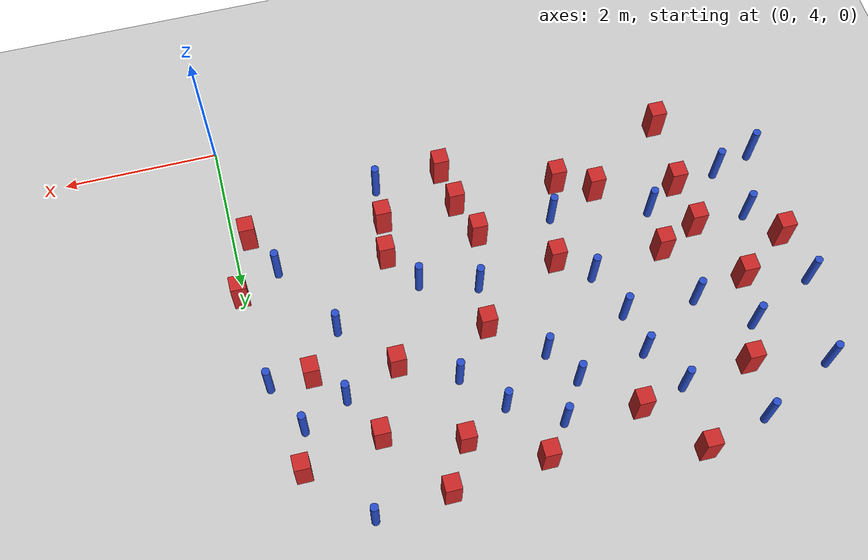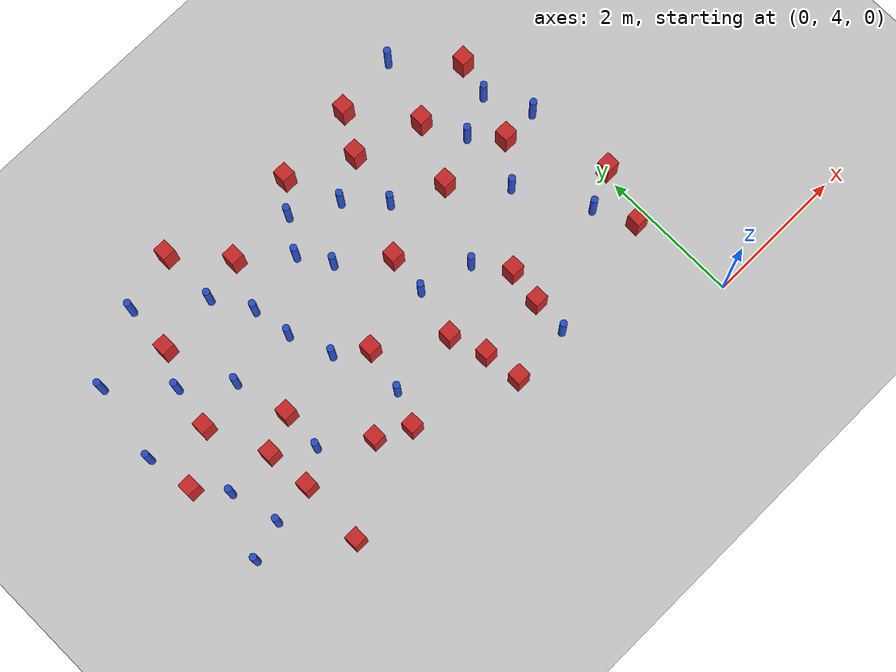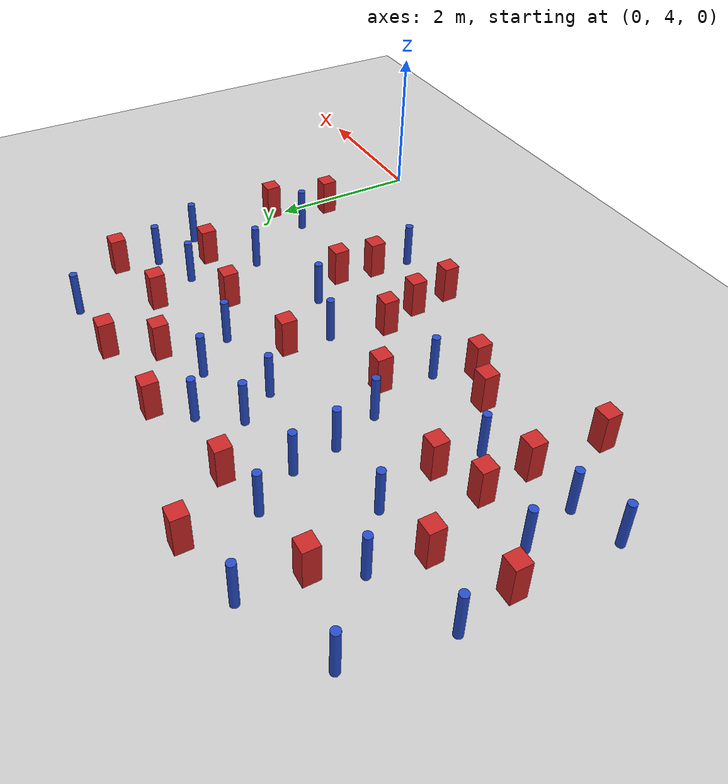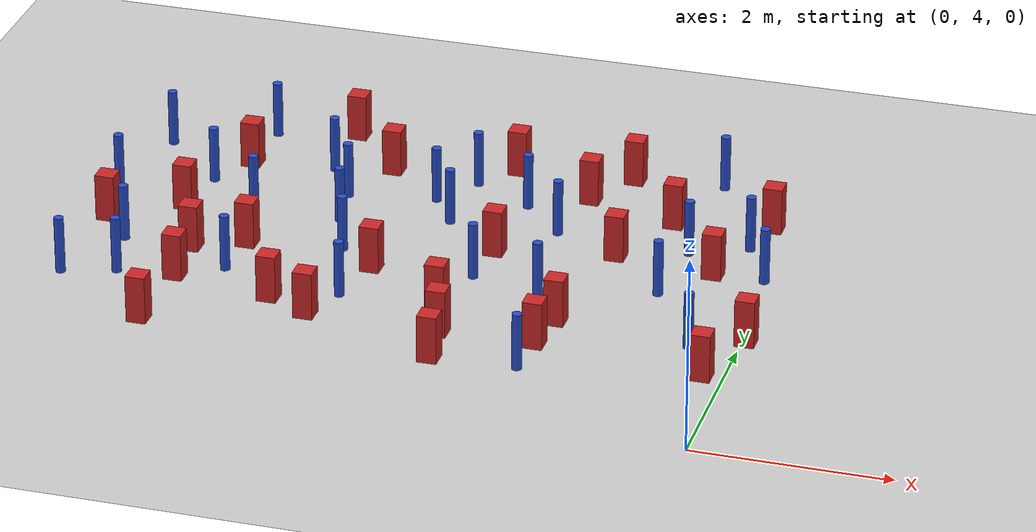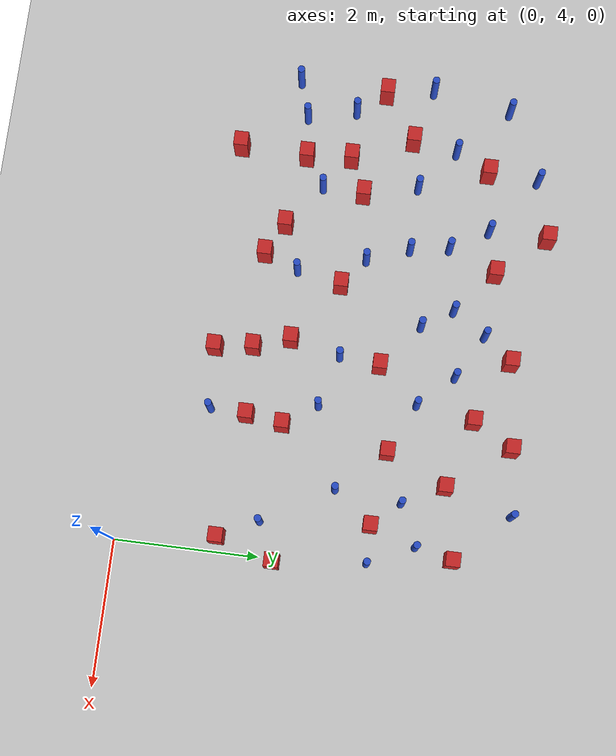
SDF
<sdf version="1.6">
 <world name="default">
  <model name="ground_plane">
   <static>1</static>
   <link name="link">
    <collision name="collision">
     <geometry><plane><normal>0 0 1</normal><size>100 100</size></plane></geometry>
     <surface><friction><ode><mu>100</mu><mu2>50</mu2></ode></friction></surface>
    </collision>
    <visual name="visual">
     <cast_shadows>0</cast_shadows>
     <geometry><plane><normal>0 0 1</normal><size>100 100</size></plane></geometry>
     <material>
      <ambient>1.0 1.0 1.0 1.0</ambient>
      <diffuse>0.8 0.8 0.8 1.0</diffuse>
      <specular>0.01 0.01 0.01 1.000000</specular>
     </material>
    </visual>
   </link>
  </model>
  <model name="square_post_obstacle2">
   <static>true</static>
   <pose>-2.89572742521 5.56003379389 1.91545236811e-07 -7.35059704564e-06 1.12565212e-07 2.39332434364e-05</pose>
   <link name="link">
    <pose>0 0 0.25 0 -0 0</pose>
    <inertial>
     <mass>100</mass>
     <inertia>
      <ixx>0.166667</ixx>
      <ixy>0</ixy>
      <ixz>0</ixz>
      <iyy>0.166667</iyy>
      <iyz>0</iyz>
      <izz>0.166667</izz>
     </inertia>
    </inertial>
    <collision name="collision"><geometry><box><size>.2 .2 .5</size></box></geometry></collision>
    <visual name="visual">
     <geometry><box><size>.2 .2 .5</size></box></geometry>
     <material>
      <script><name>Gazebo/Red</name><uri>file://media/materials/scripts/gazebo.material</uri></script>
     </material>
    </visual>
   </link>
  </model>
  <model name="pole_obstacle3">
   <static>true</static>
   <pose>-4.05855191227 6.03267944209 7.38925637345e-09 -8.47170692796e-08 1.24976764786e-08 -1.74513093032e-07</pose>
   <link name="link">
    <pose>0 0 0.3 0 -0 0</pose>
    <inertial>
     <mass>1</mass>
     <inertia><ixx>0.145833</ixx><ixy>0</ixy><ixz>0</ixz><iyy>0.145833</iyy><iyz>0</iyz><izz>0.125</izz></inertia>
    </inertial>
    <collision name="collision">
     <geometry><cylinder><radius>0.05</radius><length>.6</length></cylinder></geometry>
    </collision>
    <visual name="visual">
     <geometry><cylinder><radius>0.05</radius><length>.6</length></cylinder></geometry>
     <material>
      <script><name>Gazebo/Blue</name><uri>file://media/materials/scripts/gazebo.material</uri></script>
     </material>
    </visual>
   </link>
  </model>
  <model name="pole_obstacle4">
   <static>true</static>
   <pose>-4.62733506673 8.13093342007 7.38925637345e-09 -8.471706928e-08 1.24976765081e-08 -1.74513093015e-07</pose>
   <link name="link">
    <pose>0 0 0.3 0 -0 0</pose>
    <inertial>
     <mass>1</mass>
     <inertia><ixx>0.145833</ixx><ixy>0</ixy><ixz>0</ixz><iyy>0.145833</iyy><iyz>0</iyz><izz>0.125</izz></inertia>
    </inertial>
    <collision name="collision">
     <geometry><cylinder><radius>0.05</radius><length>.6</length></cylinder></geometry>
    </collision>
    <visual name="visual">
     <geometry><cylinder><radius>0.05</radius><length>.6</length></cylinder></geometry>
     <material>
      <script><name>Gazebo/Blue</name><uri>file://media/materials/scripts/gazebo.material</uri></script>
     </material>
    </visual>
   </link>
  </model>
  <model name="square_post_obstacle14">
   <static>true</static>
   <pose>-5.752765113 5.96022098293 1.91545236811e-07 -7.35059704564e-06 1.12565212e-07 2.39332434364e-05</pose>
   <link name="link">
    <pose>0 0 0.25 0 -0 0</pose>
    <inertial>
     <mass>100</mass>
     <inertia>
      <ixx>0.166667</ixx>
      <ixy>0</ixy>
      <ixz>0</ixz>
      <iyy>0.166667</iyy>
      <iyz>0</iyz>
      <izz>0.166667</izz>
     </inertia>
    </inertial>
    <collision name="collision"><geometry><box><size>.2 .2 .5</size></box></geometry></collision>
    <visual name="visual">
     <geometry><box><size>.2 .2 .5</size></box></geometry>
     <material>
      <script><name>Gazebo/Red</name><uri>file://media/materials/scripts/gazebo.material</uri></script>
     </material>
    </visual>
   </link>
  </model>
  <model name="square_post_obstacle16">
   <static>true</static>
   <pose>-2.20791887545 8.71867321994 1.91545236811e-07 -7.35059704564e-06 1.12565212e-07 2.39332434364e-05</pose>
   <link name="link">
    <pose>0 0 0.25 0 -0 0</pose>
    <inertial>
     <mass>100</mass>
     <inertia>
      <ixx>0.166667</ixx>
      <ixy>0</ixy>
      <ixz>0</ixz>
      <iyy>0.166667</iyy>
      <iyz>0</iyz>
      <izz>0.166667</izz>
     </inertia>
    </inertial>
    <collision name="collision"><geometry><box><size>.2 .2 .5</size></box></geometry></collision>
    <visual name="visual">
     <geometry><box><size>.2 .2 .5</size></box></geometry>
     <material>
      <script><name>Gazebo/Red</name><uri>file://media/materials/scripts/gazebo.material</uri></script>
     </material>
    </visual>
   </link>
  </model>
  <model name="pole_obstacle10">
   <static>true</static>
   <pose>-0.384061834778 8.11439856965 7.38925637345e-09 -8.47170692796e-08 1.24976764724e-08 -1.74513093036e-07</pose>
   <link name="link">
    <pose>0 0 0.3 0 -0 0</pose>
    <inertial>
     <mass>1</mass>
     <inertia><ixx>0.145833</ixx><ixy>0</ixy><ixz>0</ixz><iyy>0.145833</iyy><iyz>0</iyz><izz>0.125</izz></inertia>
    </inertial>
    <collision name="collision">
     <geometry><cylinder><radius>0.05</radius><length>.6</length></cylinder></geometry>
    </collision>
    <visual name="visual">
     <geometry><cylinder><radius>0.05</radius><length>.6</length></cylinder></geometry>
     <material>
      <script><name>Gazebo/Blue</name><uri>file://media/materials/scripts/gazebo.material</uri></script>
     </material>
    </visual>
   </link>
  </model>
  <model name="square_post_obstacle22">
   <static>true</static>
   <pose>-5.79366301867 5.0144817991 1.91545236811e-07 -7.35059704564e-06 1.12565212e-07 2.39332434364e-05</pose>
   <link name="link">
    <pose>0 0 0.25 0 -0 0</pose>
    <inertial>
     <mass>100</mass>
     <inertia>
      <ixx>0.166667</ixx>
      <ixy>0</ixy>
      <ixz>0</ixz>
      <iyy>0.166667</iyy>
      <iyz>0</iyz>
      <izz>0.166667</izz>
     </inertia>
    </inertial>
    <collision name="collision"><geometry><box><size>.2 .2 .5</size></box></geometry></collision>
    <visual name="visual">
     <geometry><box><size>.2 .2 .5</size></box></geometry>
     <material>
      <script><name>Gazebo/Red</name><uri>file://media/materials/scripts/gazebo.material</uri></script>
     </material>
    </visual>
   </link>
  </model>
  <model name="square_post_obstacle31">
   <static>true</static>
   <pose>-1.25055485922 8.42696190278 1.91545236811e-07 -7.35059704564e-06 1.12565212e-07 2.39332434364e-05</pose>
   <link name="link">
    <pose>0 0 0.25 0 -0 0</pose>
    <inertial>
     <mass>100</mass>
     <inertia>
      <ixx>0.166667</ixx>
      <ixy>0</ixy>
      <ixz>0</ixz>
      <iyy>0.166667</iyy>
      <iyz>0</iyz>
      <izz>0.166667</izz>
     </inertia>
    </inertial>
    <collision name="collision"><geometry><box><size>.2 .2 .5</size></box></geometry></collision>
    <visual name="visual">
     <geometry><box><size>.2 .2 .5</size></box></geometry>
     <material>
      <script><name>Gazebo/Red</name><uri>file://media/materials/scripts/gazebo.material</uri></script>
     </material>
    </visual>
   </link>
  </model>
  <model name="pole_obstacle25">
   <static>true</static>
   <pose>-4.32430679611 6.9793871049 7.38925637345e-09 -8.47170692796e-08 1.24976764786e-08 -1.74513093032e-07</pose>
   <link name="link">
    <pose>0 0 0.3 0 -0 0</pose>
    <inertial>
     <mass>1</mass>
     <inertia><ixx>0.145833</ixx><ixy>0</ixy><ixz>0</ixz><iyy>0.145833</iyy><iyz>0</iyz><izz>0.125</izz></inertia>
    </inertial>
    <collision name="collision">
     <geometry><cylinder><radius>0.05</radius><length>.6</length></cylinder></geometry>
    </collision>
    <visual name="visual">
     <geometry><cylinder><radius>0.05</radius><length>.6</length></cylinder></geometry>
     <material>
      <script><name>Gazebo/Blue</name><uri>file://media/materials/scripts/gazebo.material</uri></script>
     </material>
    </visual>
   </link>
  </model>
  <model name="pole_obstacle33">
   <static>true</static>
   <pose>-0.956132353944 9.37112857978 7.38925637345e-09 -8.47170692797e-08 1.24976764802e-08 -1.74513093032e-07</pose>
   <link name="link">
    <pose>0 0 0.3 0 -0 0</pose>
    <inertial>
     <mass>1</mass>
     <inertia><ixx>0.145833</ixx><ixy>0</ixy><ixz>0</ixz><iyy>0.145833</iyy><iyz>0</iyz><izz>0.125</izz></inertia>
    </inertial>
    <collision name="collision">
     <geometry><cylinder><radius>0.05</radius><length>.6</length></cylinder></geometry>
    </collision>
    <visual name="visual">
     <geometry><cylinder><radius>0.05</radius><length>.6</length></cylinder></geometry>
     <material>
      <script><name>Gazebo/Blue</name><uri>file://media/materials/scripts/gazebo.material</uri></script>
     </material>
    </visual>
   </link>
  </model>
  <model name="pole_obstacle41">
   <static>true</static>
   <pose>-2.3391813902 7.91689943719 7.38925637345e-09 -8.47170692798e-08 1.24976765033e-08 -1.74513093019e-07</pose>
   <link name="link">
    <pose>0 0 0.3 0 -0 0</pose>
    <inertial>
     <mass>1</mass>
     <inertia><ixx>0.145833</ixx><ixy>0</ixy><ixz>0</ixz><iyy>0.145833</iyy><iyz>0</iyz><izz>0.125</izz></inertia>
    </inertial>
    <collision name="collision">
     <geometry><cylinder><radius>0.05</radius><length>.6</length></cylinder></geometry>
    </collision>
    <visual name="visual">
     <geometry><cylinder><radius>0.05</radius><length>.6</length></cylinder></geometry>
     <material>
      <script><name>Gazebo/Blue</name><uri>file://media/materials/scripts/gazebo.material</uri></script>
     </material>
    </visual>
   </link>
  </model>
  <model name="pole_obstacle44">
   <static>true</static>
   <pose>-4.94385276652 8.66403175854 7.38925637345e-09 -8.471706928e-08 1.24976765081e-08 -1.74513093015e-07</pose>
   <link name="link">
    <pose>0 0 0.3 0 -0 0</pose>
    <inertial>
     <mass>1</mass>
     <inertia><ixx>0.145833</ixx><ixy>0</ixy><ixz>0</ixz><iyy>0.145833</iyy><iyz>0</iyz><izz>0.125</izz></inertia>
    </inertial>
    <collision name="collision">
     <geometry><cylinder><radius>0.05</radius><length>.6</length></cylinder></geometry>
    </collision>
    <visual name="visual">
     <geometry><cylinder><radius>0.05</radius><length>.6</length></cylinder></geometry>
     <material>
      <script><name>Gazebo/Blue</name><uri>file://media/materials/scripts/gazebo.material</uri></script>
     </material>
    </visual>
   </link>
  </model>
  <model name="square_post_obstacle48">
   <static>true</static>
   <pose>-3.92180185992 6.6681518837 1.91545236811e-07 -7.35059704564e-06 1.12565212e-07 2.39332434364e-05</pose>
   <link name="link">
    <pose>0 0 0.25 0 -0 0</pose>
    <inertial>
     <mass>100</mass>
     <inertia>
      <ixx>0.166667</ixx>
      <ixy>0</ixy>
      <ixz>0</ixz>
      <iyy>0.166667</iyy>
      <iyz>0</iyz>
      <izz>0.166667</izz>
     </inertia>
    </inertial>
    <collision name="collision"><geometry><box><size>.2 .2 .5</size></box></geometry></collision>
    <visual name="visual">
     <geometry><box><size>.2 .2 .5</size></box></geometry>
     <material>
      <script><name>Gazebo/Red</name><uri>file://media/materials/scripts/gazebo.material</uri></script>
     </material>
    </visual>
   </link>
  </model>
  <model name="pole_obstacle46">
   <static>true</static>
   <pose>-2.16946097285 6.56205751871 7.38925637345e-09 -8.47170692798e-08 1.24976765033e-08 -1.74513093019e-07</pose>
   <link name="link">
    <pose>0 0 0.3 0 -0 0</pose>
    <inertial>
     <mass>1</mass>
     <inertia><ixx>0.145833</ixx><ixy>0</ixy><ixz>0</ixz><iyy>0.145833</iyy><iyz>0</iyz><izz>0.125</izz></inertia>
    </inertial>
    <collision name="collision">
     <geometry><cylinder><radius>0.05</radius><length>.6</length></cylinder></geometry>
    </collision>
    <visual name="visual">
     <geometry><cylinder><radius>0.05</radius><length>.6</length></cylinder></geometry>
     <material>
      <script><name>Gazebo/Blue</name><uri>file://media/materials/scripts/gazebo.material</uri></script>
     </material>
    </visual>
   </link>
  </model>
  <model name="pole_obstacle47">
   <static>true</static>
   <pose>-3.41932228347 8.75494466631 7.38925637345e-09 -8.47170692799e-08 1.24976765012e-08 -1.74513093021e-07</pose>
   <link name="link">
    <pose>0 0 0.3 0 -0 0</pose>
    <inertial>
     <mass>1</mass>
     <inertia><ixx>0.145833</ixx><ixy>0</ixy><ixz>0</ixz><iyy>0.145833</iyy><iyz>0</iyz><izz>0.125</izz></inertia>
    </inertial>
    <collision name="collision">
     <geometry><cylinder><radius>0.05</radius><length>.6</length></cylinder></geometry>
    </collision>
    <visual name="visual">
     <geometry><cylinder><radius>0.05</radius><length>.6</length></cylinder></geometry>
     <material>
      <script><name>Gazebo/Blue</name><uri>file://media/materials/scripts/gazebo.material</uri></script>
     </material>
    </visual>
   </link>
  </model>
  <model name="pole_obstacle48">
   <static>true</static>
   <pose>-6.34684852551 5.89823008887 7.38925637345e-09 -8.47170692796e-08 1.24976764786e-08 -1.74513093032e-07</pose>
   <link name="link">
    <pose>0 0 0.3 0 -0 0</pose>
    <inertial>
     <mass>1</mass>
     <inertia><ixx>0.145833</ixx><ixy>0</ixy><ixz>0</ixz><iyy>0.145833</iyy><iyz>0</iyz><izz>0.125</izz></inertia>
    </inertial>
    <collision name="collision">
     <geometry><cylinder><radius>0.05</radius><length>.6</length></cylinder></geometry>
    </collision>
    <visual name="visual">
     <geometry><cylinder><radius>0.05</radius><length>.6</length></cylinder></geometry>
     <material>
      <script><name>Gazebo/Blue</name><uri>file://media/materials/scripts/gazebo.material</uri></script>
     </material>
    </visual>
   </link>
  </model>
  <model name="pole_obstacle51">
   <static>true</static>
   <pose>-5.4716143119 7.5938577772 7.38925637345e-09 -8.47170692796e-08 1.24976764786e-08 -1.74513093032e-07</pose>
   <link name="link">
    <pose>0 0 0.3 0 -0 0</pose>
    <inertial>
     <mass>1</mass>
     <inertia><ixx>0.145833</ixx><ixy>0</ixy><ixz>0</ixz><iyy>0.145833</iyy><iyz>0</iyz><izz>0.125</izz></inertia>
    </inertial>
    <collision name="collision">
     <geometry><cylinder><radius>0.05</radius><length>.6</length></cylinder></geometry>
    </collision>
    <visual name="visual">
     <geometry><cylinder><radius>0.05</radius><length>.6</length></cylinder></geometry>
     <material>
      <script><name>Gazebo/Blue</name><uri>file://media/materials/scripts/gazebo.material</uri></script>
     </material>
    </visual>
   </link>
  </model>
  <model name="square_post_obstacle59">
   <static>true</static>
   <pose>0.0380453816629 6.20095032388 1.91545236811e-07 -7.35059704564e-06 1.12565212e-07 2.39332434364e-05</pose>
   <link name="link">
    <pose>0 0 0.25 0 -0 0</pose>
    <inertial>
     <mass>100</mass>
     <inertia>
      <ixx>0.166667</ixx>
      <ixy>0</ixy>
      <ixz>0</ixz>
      <iyy>0.166667</iyy>
      <iyz>0</iyz>
      <izz>0.166667</izz>
     </inertia>
    </inertial>
    <collision name="collision"><geometry><box><size>.2 .2 .5</size></box></geometry></collision>
    <visual name="visual">
     <geometry><box><size>.2 .2 .5</size></box></geometry>
     <material>
      <script><name>Gazebo/Red</name><uri>file://media/materials/scripts/gazebo.material</uri></script>
     </material>
    </visual>
   </link>
  </model>
  <model name="square_post_obstacle68">
   <static>true</static>
   <pose>-0.207180514325 5.41131387157 1.91545236811e-07 -7.35059704564e-06 1.12565212e-07 2.39332434364e-05</pose>
   <link name="link">
    <pose>0 0 0.25 0 -0 0</pose>
    <inertial>
     <mass>100</mass>
     <inertia>
      <ixx>0.166667</ixx>
      <ixy>0</ixy>
      <ixz>0</ixz>
      <iyy>0.166667</iyy>
      <iyz>0</iyz>
      <izz>0.166667</izz>
     </inertia>
    </inertial>
    <collision name="collision"><geometry><box><size>.2 .2 .5</size></box></geometry></collision>
    <visual name="visual">
     <geometry><box><size>.2 .2 .5</size></box></geometry>
     <material>
      <script><name>Gazebo/Red</name><uri>file://media/materials/scripts/gazebo.material</uri></script>
     </material>
    </visual>
   </link>
  </model>
  <model name="square_post_obstacle75">
   <static>true</static>
   <pose>-1.92662591262 5.5899390586 1.91545236811e-07 -7.35059704564e-06 1.12565212e-07 2.39332434364e-05</pose>
   <link name="link">
    <pose>0 0 0.25 0 -0 0</pose>
    <inertial>
     <mass>100</mass>
     <inertia>
      <ixx>0.166667</ixx>
      <ixy>0</ixy>
      <ixz>0</ixz>
      <iyy>0.166667</iyy>
      <iyz>0</iyz>
      <izz>0.166667</izz>
     </inertia>
    </inertial>
    <collision name="collision"><geometry><box><size>.2 .2 .5</size></box></geometry></collision>
    <visual name="visual">
     <geometry><box><size>.2 .2 .5</size></box></geometry>
     <material>
      <script><name>Gazebo/Red</name><uri>file://media/materials/scripts/gazebo.material</uri></script>
     </material>
    </visual>
   </link>
  </model>
  <model name="pole_obstacle76">
   <static>true</static>
   <pose>-0.955330389678 7.85503233852 7.38925637345e-09 -8.47170692799e-08 1.2497676509e-08 -1.74513093015e-07</pose>
   <link name="link">
    <pose>0 0 0.3 0 -0 0</pose>
    <inertial>
     <mass>1</mass>
     <inertia><ixx>0.145833</ixx><ixy>0</ixy><ixz>0</ixz><iyy>0.145833</iyy><iyz>0</iyz><izz>0.125</izz></inertia>
    </inertial>
    <collision name="collision">
     <geometry><cylinder><radius>0.05</radius><length>.6</length></cylinder></geometry>
    </collision>
    <visual name="visual">
     <geometry><cylinder><radius>0.05</radius><length>.6</length></cylinder></geometry>
     <material>
      <script><name>Gazebo/Blue</name><uri>file://media/materials/scripts/gazebo.material</uri></script>
     </material>
    </visual>
   </link>
  </model>
  <model name="pole_obstacle82">
   <static>true</static>
   <pose>-3.45565933046 7.85379811484 7.38925637345e-09 -8.47170692798e-08 1.24976765033e-08 -1.74513093019e-07</pose>
   <link name="link">
    <pose>0 0 0.3 0 -0 0</pose>
    <inertial>
     <mass>1</mass>
     <inertia><ixx>0.145833</ixx><ixy>0</ixy><ixz>0</ixz><iyy>0.145833</iyy><iyz>0</iyz><izz>0.125</izz></inertia>
    </inertial>
    <collision name="collision">
     <geometry><cylinder><radius>0.05</radius><length>.6</length></cylinder></geometry>
    </collision>
    <visual name="visual">
     <geometry><cylinder><radius>0.05</radius><length>.6</length></cylinder></geometry>
     <material>
      <script><name>Gazebo/Blue</name><uri>file://media/materials/scripts/gazebo.material</uri></script>
     </material>
    </visual>
   </link>
  </model>
  <model name="square_post_obstacle84">
   <static>true</static>
   <pose>-4.70862585317 5.7831326393 1.91545236811e-07 -7.35059704564e-06 1.12565212e-07 2.39332434364e-05</pose>
   <link name="link">
    <pose>0 0 0.25 0 -0 0</pose>
    <inertial>
     <mass>100</mass>
     <inertia>
      <ixx>0.166667</ixx>
      <ixy>0</ixy>
      <ixz>0</ixz>
      <iyy>0.166667</iyy>
      <iyz>0</iyz>
      <izz>0.166667</izz>
     </inertia>
    </inertial>
    <collision name="collision"><geometry><box><size>.2 .2 .5</size></box></geometry></collision>
    <visual name="visual">
     <geometry><box><size>.2 .2 .5</size></box></geometry>
     <material>
      <script><name>Gazebo/Red</name><uri>file://media/materials/scripts/gazebo.material</uri></script>
     </material>
    </visual>
   </link>
  </model>
  <model name="square_post_obstacle85">
   <static>true</static>
   <pose>-5.80944955472 8.56686562402 1.91545236811e-07 -7.35059704564e-06 1.12565212e-07 2.39332434364e-05</pose>
   <link name="link">
    <pose>0 0 0.25 0 -0 0</pose>
    <inertial>
     <mass>100</mass>
     <inertia>
      <ixx>0.166667</ixx>
      <ixy>0</ixy>
      <ixz>0</ixz>
      <iyy>0.166667</iyy>
      <iyz>0</iyz>
      <izz>0.166667</izz>
     </inertia>
    </inertial>
    <collision name="collision"><geometry><box><size>.2 .2 .5</size></box></geometry></collision>
    <visual name="visual">
     <geometry><box><size>.2 .2 .5</size></box></geometry>
     <material>
      <script><name>Gazebo/Red</name><uri>file://media/materials/scripts/gazebo.material</uri></script>
     </material>
    </visual>
   </link>
  </model>
  <model name="pole_obstacle114">
   <static>true</static>
   <pose>-1.03730282745 6.93372815498 7.38925637345e-09 -8.47170692799e-08 1.2497676505e-08 -1.74513093018e-07</pose>
   <link name="link">
    <pose>0 0 0.3 0 -0 0</pose>
    <inertial>
     <mass>1</mass>
     <inertia><ixx>0.145833</ixx><ixy>0</ixy><ixz>0</ixz><iyy>0.145833</iyy><iyz>0</iyz><izz>0.125</izz></inertia>
    </inertial>
    <collision name="collision">
     <geometry><cylinder><radius>0.05</radius><length>.6</length></cylinder></geometry>
    </collision>
    <visual name="visual">
     <geometry><cylinder><radius>0.05</radius><length>.6</length></cylinder></geometry>
     <material>
      <script><name>Gazebo/Blue</name><uri>file://media/materials/scripts/gazebo.material</uri></script>
     </material>
    </visual>
   </link>
  </model>
  <model name="square_post_obstacle103">
   <static>true</static>
   <pose>-1.88264549565 9.2742324761 1.91545236811e-07 -7.35059704564e-06 1.12565212e-07 2.39332434364e-05</pose>
   <link name="link">
    <pose>0 0 0.25 0 -0 0</pose>
    <inertial>
     <mass>100</mass>
     <inertia>
      <ixx>0.166667</ixx>
      <ixy>0</ixy>
      <ixz>0</ixz>
      <iyy>0.166667</iyy>
      <iyz>0</iyz>
      <izz>0.166667</izz>
     </inertia>
    </inertial>
    <collision name="collision"><geometry><box><size>.2 .2 .5</size></box></geometry></collision>
    <visual name="visual">
     <geometry><box><size>.2 .2 .5</size></box></geometry>
     <material>
      <script><name>Gazebo/Red</name><uri>file://media/materials/scripts/gazebo.material</uri></script>
     </material>
    </visual>
   </link>
  </model>
  <model name="square_post_obstacle112">
   <static>true</static>
   <pose>-3.06179523638 6.06896157415 1.91545236811e-07 -7.35059704564e-06 1.12565212e-07 2.39332434364e-05</pose>
   <link name="link">
    <pose>0 0 0.25 0 -0 0</pose>
    <inertial>
     <mass>100</mass>
     <inertia>
      <ixx>0.166667</ixx>
      <ixy>0</ixy>
      <ixz>0</ixz>
      <iyy>0.166667</iyy>
      <iyz>0</iyz>
      <izz>0.166667</izz>
     </inertia>
    </inertial>
    <collision name="collision"><geometry><box><size>.2 .2 .5</size></box></geometry></collision>
    <visual name="visual">
     <geometry><box><size>.2 .2 .5</size></box></geometry>
     <material>
      <script><name>Gazebo/Red</name><uri>file://media/materials/scripts/gazebo.material</uri></script>
     </material>
    </visual>
   </link>
  </model>
  <model name="pole_obstacle126">
   <static>true</static>
   <pose>-4.54405818078 7.57791441653 7.38925637345e-09 -8.47170692796e-08 1.24976764786e-08 -1.74513093032e-07</pose>
   <link name="link">
    <pose>0 0 0.3 0 -0 0</pose>
    <inertial>
     <mass>1</mass>
     <inertia><ixx>0.145833</ixx><ixy>0</ixy><ixz>0</ixz><iyy>0.145833</iyy><iyz>0</iyz><izz>0.125</izz></inertia>
    </inertial>
    <collision name="collision">
     <geometry><cylinder><radius>0.05</radius><length>.6</length></cylinder></geometry>
    </collision>
    <visual name="visual">
     <geometry><cylinder><radius>0.05</radius><length>.6</length></cylinder></geometry>
     <material>
      <script><name>Gazebo/Blue</name><uri>file://media/materials/scripts/gazebo.material</uri></script>
     </material>
    </visual>
   </link>
  </model>
  <model name="square_post_obstacle123">
   <static>true</static>
   <pose>-5.28518907221 6.82801712376 1.91545236811e-07 -7.35059704564e-06 1.12565212e-07 2.39332434364e-05</pose>
   <link name="link">
    <pose>0 0 0.25 0 -0 0</pose>
    <inertial>
     <mass>100</mass>
     <inertia>
      <ixx>0.166667</ixx>
      <ixy>0</ixy>
      <ixz>0</ixz>
      <iyy>0.166667</iyy>
      <iyz>0</iyz>
      <izz>0.166667</izz>
     </inertia>
    </inertial>
    <collision name="collision"><geometry><box><size>.2 .2 .5</size></box></geometry></collision>
    <visual name="visual">
     <geometry><box><size>.2 .2 .5</size></box></geometry>
     <material>
      <script><name>Gazebo/Red</name><uri>file://media/materials/scripts/gazebo.material</uri></script>
     </material>
    </visual>
   </link>
  </model>
  <model name="square_post_obstacle127">
   <static>true</static>
   <pose>-4.3446509904 8.80626136866 1.91545236811e-07 -7.35059704564e-06 1.12565212e-07 2.39332434364e-05</pose>
   <link name="link">
    <pose>0 0 0.25 0 -0 0</pose>
    <inertial>
     <mass>100</mass>
     <inertia>
      <ixx>0.166667</ixx>
      <ixy>0</ixy>
      <ixz>0</ixz>
      <iyy>0.166667</iyy>
      <iyz>0</iyz>
      <izz>0.166667</izz>
     </inertia>
    </inertial>
    <collision name="collision"><geometry><box><size>.2 .2 .5</size></box></geometry></collision>
    <visual name="visual">
     <geometry><box><size>.2 .2 .5</size></box></geometry>
     <material>
      <script><name>Gazebo/Red</name><uri>file://media/materials/scripts/gazebo.material</uri></script>
     </material>
    </visual>
   </link>
  </model>
  <model name="square_post_obstacle130">
   <static>true</static>
   <pose>-6.83422859506 6.99373269727 1.91545236811e-07 -7.35059704564e-06 1.12565212e-07 2.39332434364e-05</pose>
   <link name="link">
    <pose>0 0 0.25 0 -0 0</pose>
    <inertial>
     <mass>100</mass>
     <inertia>
      <ixx>0.166667</ixx>
      <ixy>0</ixy>
      <ixz>0</ixz>
      <iyy>0.166667</iyy>
      <iyz>0</iyz>
      <izz>0.166667</izz>
     </inertia>
    </inertial>
    <collision name="collision"><geometry><box><size>.2 .2 .5</size></box></geometry></collision>
    <visual name="visual">
     <geometry><box><size>.2 .2 .5</size></box></geometry>
     <material>
      <script><name>Gazebo/Red</name><uri>file://media/materials/scripts/gazebo.material</uri></script>
     </material>
    </visual>
   </link>
  </model>
  <model name="square_post_obstacle134">
   <static>true</static>
   <pose>-1.64157744798 7.58428211406 1.91545236811e-07 -7.35059704564e-06 1.12565212e-07 2.39332434364e-05</pose>
   <link name="link">
    <pose>0 0 0.25 0 -0 0</pose>
    <inertial>
     <mass>100</mass>
     <inertia>
      <ixx>0.166667</ixx>
      <ixy>0</ixy>
      <ixz>0</ixz>
      <iyy>0.166667</iyy>
      <iyz>0</iyz>
      <izz>0.166667</izz>
     </inertia>
    </inertial>
    <collision name="collision"><geometry><box><size>.2 .2 .5</size></box></geometry></collision>
    <visual name="visual">
     <geometry><box><size>.2 .2 .5</size></box></geometry>
     <material>
      <script><name>Gazebo/Red</name><uri>file://media/materials/scripts/gazebo.material</uri></script>
     </material>
    </visual>
   </link>
  </model>
  <model name="pole_obstacle148">
   <static>true</static>
   <pose>-6.88422620056 5.73691871825 7.38925637345e-09 -8.47170692796e-08 1.24976764786e-08 -1.74513093032e-07</pose>
   <link name="link">
    <pose>0 0 0.3 0 -0 0</pose>
    <inertial>
     <mass>1</mass>
     <inertia><ixx>0.145833</ixx><ixy>0</ixy><ixz>0</ixz><iyy>0.145833</iyy><iyz>0</iyz><izz>0.125</izz></inertia>
    </inertial>
    <collision name="collision">
     <geometry><cylinder><radius>0.05</radius><length>.6</length></cylinder></geometry>
    </collision>
    <visual name="visual">
     <geometry><cylinder><radius>0.05</radius><length>.6</length></cylinder></geometry>
     <material>
      <script><name>Gazebo/Blue</name><uri>file://media/materials/scripts/gazebo.material</uri></script>
     </material>
    </visual>
   </link>
  </model>
  <model name="pole_obstacle149">
   <static>true</static>
   <pose>-2.89539631356 6.77337213724 7.38925637345e-09 -8.47170692798e-08 1.24976765033e-08 -1.74513093019e-07</pose>
   <link name="link">
    <pose>0 0 0.3 0 -0 0</pose>
    <inertial>
     <mass>1</mass>
     <inertia><ixx>0.145833</ixx><ixy>0</ixy><ixz>0</ixz><iyy>0.145833</iyy><iyz>0</iyz><izz>0.125</izz></inertia>
    </inertial>
    <collision name="collision">
     <geometry><cylinder><radius>0.05</radius><length>.6</length></cylinder></geometry>
    </collision>
    <visual name="visual">
     <geometry><cylinder><radius>0.05</radius><length>.6</length></cylinder></geometry>
     <material>
      <script><name>Gazebo/Blue</name><uri>file://media/materials/scripts/gazebo.material</uri></script>
     </material>
    </visual>
   </link>
  </model>
  <model name="pole_obstacle150">
   <static>true</static>
   <pose>-0.479943697888 5.9581588098 7.38925637345e-09 -8.471706928e-08 1.24976765062e-08 -1.74513093016e-07</pose>
   <link name="link">
    <pose>0 0 0.3 0 -0 0</pose>
    <inertial>
     <mass>1</mass>
     <inertia><ixx>0.145833</ixx><ixy>0</ixy><ixz>0</ixz><iyy>0.145833</iyy><iyz>0</iyz><izz>0.125</izz></inertia>
    </inertial>
    <collision name="collision">
     <geometry><cylinder><radius>0.05</radius><length>.6</length></cylinder></geometry>
    </collision>
    <visual name="visual">
     <geometry><cylinder><radius>0.05</radius><length>.6</length></cylinder></geometry>
     <material>
      <script><name>Gazebo/Blue</name><uri>file://media/materials/scripts/gazebo.material</uri></script>
     </material>
    </visual>
   </link>
  </model>
  <model name="square_post_obstacle141">
   <static>true</static>
   <pose>-1.85416994307 6.09951253709 1.91545236811e-07 -7.35059704564e-06 1.12565212e-07 2.39332434364e-05</pose>
   <link name="link">
    <pose>0 0 0.25 0 -0 0</pose>
    <inertial>
     <mass>100</mass>
     <inertia>
      <ixx>0.166667</ixx>
      <ixy>0</ixy>
      <ixz>0</ixz>
      <iyy>0.166667</iyy>
      <iyz>0</iyz>
      <izz>0.166667</izz>
     </inertia>
    </inertial>
    <collision name="collision"><geometry><box><size>.2 .2 .5</size></box></geometry></collision>
    <visual name="visual">
     <geometry><box><size>.2 .2 .5</size></box></geometry>
     <material>
      <script><name>Gazebo/Red</name><uri>file://media/materials/scripts/gazebo.material</uri></script>
     </material>
    </visual>
   </link>
  </model>
  <model name="square_post_obstacle142">
   <static>true</static>
   <pose>-0.264263058949 8.62156595443 1.91545236811e-07 -7.35059704564e-06 1.12565212e-07 2.39332434364e-05</pose>
   <link name="link">
    <pose>0 0 0.25 0 -0 0</pose>
    <inertial>
     <mass>100</mass>
     <inertia>
      <ixx>0.166667</ixx>
      <ixy>0</ixy>
      <ixz>0</ixz>
      <iyy>0.166667</iyy>
      <iyz>0</iyz>
      <izz>0.166667</izz>
     </inertia>
    </inertial>
    <collision name="collision"><geometry><box><size>.2 .2 .5</size></box></geometry></collision>
    <visual name="visual">
     <geometry><box><size>.2 .2 .5</size></box></geometry>
     <material>
      <script><name>Gazebo/Red</name><uri>file://media/materials/scripts/gazebo.material</uri></script>
     </material>
    </visual>
   </link>
  </model>
  <model name="pole_obstacle154">
   <static>true</static>
   <pose>-6.75922179763 8.78328946304 7.38925637345e-09 -8.471706928e-08 1.24976765081e-08 -1.74513093015e-07</pose>
   <link name="link">
    <pose>0 0 0.3 0 -0 0</pose>
    <inertial>
     <mass>1</mass>
     <inertia><ixx>0.145833</ixx><ixy>0</ixy><ixz>0</ixz><iyy>0.145833</iyy><iyz>0</iyz><izz>0.125</izz></inertia>
    </inertial>
    <collision name="collision">
     <geometry><cylinder><radius>0.05</radius><length>.6</length></cylinder></geometry>
    </collision>
    <visual name="visual">
     <geometry><cylinder><radius>0.05</radius><length>.6</length></cylinder></geometry>
     <material>
      <script><name>Gazebo/Blue</name><uri>file://media/materials/scripts/gazebo.material</uri></script>
     </material>
    </visual>
   </link>
  </model>
  <model name="square_post_obstacle149">
   <static>true</static>
   <pose>-2.82543233057 5.03152757903 1.91545236811e-07 -7.35059704564e-06 1.12565212e-07 2.39332434364e-05</pose>
   <link name="link">
    <pose>0 0 0.25 0 -0 0</pose>
    <inertial>
     <mass>100</mass>
     <inertia>
      <ixx>0.166667</ixx>
      <ixy>0</ixy>
      <ixz>0</ixz>
      <iyy>0.166667</iyy>
      <iyz>0</iyz>
      <izz>0.166667</izz>
     </inertia>
    </inertial>
    <collision name="collision"><geometry><box><size>.2 .2 .5</size></box></geometry></collision>
    <visual name="visual">
     <geometry><box><size>.2 .2 .5</size></box></geometry>
     <material>
      <script><name>Gazebo/Red</name><uri>file://media/materials/scripts/gazebo.material</uri></script>
     </material>
    </visual>
   </link>
  </model>
  <model name="square_post_obstacle153">
   <static>true</static>
   <pose>-6.161808094 7.44989250288 1.91545236811e-07 -7.35059704564e-06 1.12565212e-07 2.39332434364e-05</pose>
   <link name="link">
    <pose>0 0 0.25 0 -0 0</pose>
    <inertial>
     <mass>100</mass>
     <inertia>
      <ixx>0.166667</ixx>
      <ixy>0</ixy>
      <ixz>0</ixz>
      <iyy>0.166667</iyy>
      <iyz>0</iyz>
      <izz>0.166667</izz>
     </inertia>
    </inertial>
    <collision name="collision"><geometry><box><size>.2 .2 .5</size></box></geometry></collision>
    <visual name="visual">
     <geometry><box><size>.2 .2 .5</size></box></geometry>
     <material>
      <script><name>Gazebo/Red</name><uri>file://media/materials/scripts/gazebo.material</uri></script>
     </material>
    </visual>
   </link>
  </model>
  <model name="pole_obstacle161">
   <static>true</static>
   <pose>-6.06470270528 8.08397418681 7.38925637345e-09 -8.471706928e-08 1.24976765081e-08 -1.74513093015e-07</pose>
   <link name="link">
    <pose>0 0 0.3 0 -0 0</pose>
    <inertial>
     <mass>1</mass>
     <inertia><ixx>0.145833</ixx><ixy>0</ixy><ixz>0</ixz><iyy>0.145833</iyy><iyz>0</iyz><izz>0.125</izz></inertia>
    </inertial>
    <collision name="collision">
     <geometry><cylinder><radius>0.05</radius><length>.6</length></cylinder></geometry>
    </collision>
    <visual name="visual">
     <geometry><cylinder><radius>0.05</radius><length>.6</length></cylinder></geometry>
     <material>
      <script><name>Gazebo/Blue</name><uri>file://media/materials/scripts/gazebo.material</uri></script>
     </material>
    </visual>
   </link>
  </model>
  <model name="pole_obstacle185">
   <static>true</static>
   <pose>-5.32092788286 6.24234487529 7.38925637345e-09 -8.47170692796e-08 1.24976764786e-08 -1.74513093032e-07</pose>
   <link name="link">
    <pose>0 0 0.3 0 -0 0</pose>
    <inertial>
     <mass>1</mass>
     <inertia><ixx>0.145833</ixx><ixy>0</ixy><ixz>0</ixz><iyy>0.145833</iyy><iyz>0</iyz><izz>0.125</izz></inertia>
    </inertial>
    <collision name="collision">
     <geometry><cylinder><radius>0.05</radius><length>.6</length></cylinder></geometry>
    </collision>
    <visual name="visual">
     <geometry><cylinder><radius>0.05</radius><length>.6</length></cylinder></geometry>
     <material>
      <script><name>Gazebo/Blue</name><uri>file://media/materials/scripts/gazebo.material</uri></script>
     </material>
    </visual>
   </link>
  </model>
  <model name="square_post_obstacle179">
   <static>true</static>
   <pose>-3.09334404753 9.14768194489 1.91545236811e-07 -7.35059704564e-06 1.12565212e-07 2.39332434364e-05</pose>
   <link name="link">
    <pose>0 0 0.25 0 -0 0</pose>
    <inertial>
     <mass>100</mass>
     <inertia>
      <ixx>0.166667</ixx>
      <ixy>0</ixy>
      <ixz>0</ixz>
      <iyy>0.166667</iyy>
      <iyz>0</iyz>
      <izz>0.166667</izz>
     </inertia>
    </inertial>
    <collision name="collision"><geometry><box><size>.2 .2 .5</size></box></geometry></collision>
    <visual name="visual">
     <geometry><box><size>.2 .2 .5</size></box></geometry>
     <material>
      <script><name>Gazebo/Red</name><uri>file://media/materials/scripts/gazebo.material</uri></script>
     </material>
    </visual>
   </link>
  </model>
  <model name="square_post_obstacle185">
   <static>true</static>
   <pose>-2.83689303824 7.34382160658 1.91545236811e-07 -7.35059704564e-06 1.12565212e-07 2.39332434364e-05</pose>
   <link name="link">
    <pose>0 0 0.25 0 -0 0</pose>
    <inertial>
     <mass>100</mass>
     <inertia>
      <ixx>0.166667</ixx>
      <ixy>0</ixy>
      <ixz>0</ixz>
      <iyy>0.166667</iyy>
      <iyz>0</iyz>
      <izz>0.166667</izz>
     </inertia>
    </inertial>
    <collision name="collision"><geometry><box><size>.2 .2 .5</size></box></geometry></collision>
    <visual name="visual">
     <geometry><box><size>.2 .2 .5</size></box></geometry>
     <material>
      <script><name>Gazebo/Red</name><uri>file://media/materials/scripts/gazebo.material</uri></script>
     </material>
    </visual>
   </link>
  </model>
  <model name="square_post_obstacle188">
   <static>true</static>
   <pose>-4.2542106123 5.55145222605 1.91545236811e-07 -7.35059704564e-06 1.12565212e-07 2.39332434364e-05</pose>
   <link name="link">
    <pose>0 0 0.25 0 -0 0</pose>
    <inertial>
     <mass>100</mass>
     <inertia>
      <ixx>0.166667</ixx>
      <ixy>0</ixy>
      <ixz>0</ixz>
      <iyy>0.166667</iyy>
      <iyz>0</iyz>
      <izz>0.166667</izz>
     </inertia>
    </inertial>
    <collision name="collision"><geometry><box><size>.2 .2 .5</size></box></geometry></collision>
    <visual name="visual">
     <geometry><box><size>.2 .2 .5</size></box></geometry>
     <material>
      <script><name>Gazebo/Red</name><uri>file://media/materials/scripts/gazebo.material</uri></script>
     </material>
    </visual>
   </link>
  </model>
  <model name="square_post_obstacle190">
   <static>true</static>
   <pose>-4.93801648763 9.48782336651 1.91545236811e-07 -7.35059704564e-06 1.12565212e-07 2.39332434364e-05</pose>
   <link name="link">
    <pose>0 0 0.25 0 -0 0</pose>
    <inertial>
     <mass>100</mass>
     <inertia>
      <ixx>0.166667</ixx>
      <ixy>0</ixy>
      <ixz>0</ixz>
      <iyy>0.166667</iyy>
      <iyz>0</iyz>
      <izz>0.166667</izz>
     </inertia>
    </inertial>
    <collision name="collision"><geometry><box><size>.2 .2 .5</size></box></geometry></collision>
    <visual name="visual">
     <geometry><box><size>.2 .2 .5</size></box></geometry>
     <material>
      <script><name>Gazebo/Red</name><uri>file://media/materials/scripts/gazebo.material</uri></script>
     </material>
    </visual>
   </link>
  </model>
  <model name="square_post_obstacle200">
   <static>true</static>
   <pose>-0.60866060571 7.46876672019 1.91545236811e-07 -7.35059704564e-06 1.12565212e-07 2.39332434364e-05</pose>
   <link name="link">
    <pose>0 0 0.25 0 -0 0</pose>
    <inertial>
     <mass>100</mass>
     <inertia>
      <ixx>0.166667</ixx>
      <ixy>0</ixy>
      <ixz>0</ixz>
      <iyy>0.166667</iyy>
      <iyz>0</iyz>
      <izz>0.166667</izz>
     </inertia>
    </inertial>
    <collision name="collision"><geometry><box><size>.2 .2 .5</size></box></geometry></collision>
    <visual name="visual">
     <geometry><box><size>.2 .2 .5</size></box></geometry>
     <material>
      <script><name>Gazebo/Red</name><uri>file://media/materials/scripts/gazebo.material</uri></script>
     </material>
    </visual>
   </link>
  </model>
  <model name="square_post_obstacle202">
   <static>true</static>
   <pose>-5.80104787402 6.59756818834 1.91545236811e-07 -7.35059704564e-06 1.12565212e-07 2.39332434364e-05</pose>
   <link name="link">
    <pose>0 0 0.25 0 -0 0</pose>
    <inertial>
     <mass>100</mass>
     <inertia>
      <ixx>0.166667</ixx>
      <ixy>0</ixy>
      <ixz>0</ixz>
      <iyy>0.166667</iyy>
      <iyz>0</iyz>
      <izz>0.166667</izz>
     </inertia>
    </inertial>
    <collision name="collision"><geometry><box><size>.2 .2 .5</size></box></geometry></collision>
    <visual name="visual">
     <geometry><box><size>.2 .2 .5</size></box></geometry>
     <material>
      <script><name>Gazebo/Red</name><uri>file://media/materials/scripts/gazebo.material</uri></script>
     </material>
    </visual>
   </link>
  </model>
  <model name="pole_obstacle189">
   <static>true</static>
   <pose>-0.0869397630898 7.47762531697 7.38925637345e-09 -8.47170692799e-08 1.24976765047e-08 -1.74513093018e-07</pose>
   <link name="link">
    <pose>0 0 0.3 0 -0 0</pose>
    <inertial>
     <mass>1</mass>
     <inertia><ixx>0.145833</ixx><ixy>0</ixy><ixz>0</ixz><iyy>0.145833</iyy><iyz>0</iyz><izz>0.125</izz></inertia>
    </inertial>
    <collision name="collision">
     <geometry><cylinder><radius>0.05</radius><length>.6</length></cylinder></geometry>
    </collision>
    <visual name="visual">
     <geometry><cylinder><radius>0.05</radius><length>.6</length></cylinder></geometry>
     <material>
      <script><name>Gazebo/Blue</name><uri>file://media/materials/scripts/gazebo.material</uri></script>
     </material>
    </visual>
   </link>
  </model>
  <model name="pole_obstacle201">
   <static>true</static>
   <pose>-6.95317235085 7.66298043204 7.38925637345e-09 -8.47170692796e-08 1.24976764786e-08 -1.74513093032e-07</pose>
   <link name="link">
    <pose>0 0 0.3 0 -0 0</pose>
    <inertial>
     <mass>1</mass>
     <inertia><ixx>0.145833</ixx><ixy>0</ixy><ixz>0</ixz><iyy>0.145833</iyy><iyz>0</iyz><izz>0.125</izz></inertia>
    </inertial>
    <collision name="collision">
     <geometry><cylinder><radius>0.05</radius><length>.6</length></cylinder></geometry>
    </collision>
    <visual name="visual">
     <geometry><cylinder><radius>0.05</radius><length>.6</length></cylinder></geometry>
     <material>
      <script><name>Gazebo/Blue</name><uri>file://media/materials/scripts/gazebo.material</uri></script>
     </material>
    </visual>
   </link>
  </model>
  <model name="pole_obstacle208">
   <static>true</static>
   <pose>-5.76986999043 9.28045002078 7.38925637345e-09 -8.471706928e-08 1.24976765081e-08 -1.74513093015e-07</pose>
   <link name="link">
    <pose>0 0 0.3 0 -0 0</pose>
    <inertial>
     <mass>1</mass>
     <inertia><ixx>0.145833</ixx><ixy>0</ixy><ixz>0</ixz><iyy>0.145833</iyy><iyz>0</iyz><izz>0.125</izz></inertia>
    </inertial>
    <collision name="collision">
     <geometry><cylinder><radius>0.05</radius><length>.6</length></cylinder></geometry>
    </collision>
    <visual name="visual">
     <geometry><cylinder><radius>0.05</radius><length>.6</length></cylinder></geometry>
     <material>
      <script><name>Gazebo/Blue</name><uri>file://media/materials/scripts/gazebo.material</uri></script>
     </material>
    </visual>
   </link>
  </model>
  <model name="pole_obstacle210">
   <static>true</static>
   <pose>-3.72999999043 8.28627002078 7.38925637345e-09 -8.47170692799e-08 1.24976765012e-08 -1.74513093021e-07</pose>
   <link name="link">
    <pose>0 0 0.3 0 -0 0</pose>
    <inertial>
     <mass>1</mass>
     <inertia><ixx>0.145833</ixx><ixy>0</ixy><ixz>0</ixz><iyy>0.145833</iyy><iyz>0</iyz><izz>0.125</izz></inertia>
    </inertial>
    <collision name="collision">
     <geometry><cylinder><radius>0.05</radius><length>.6</length></cylinder></geometry>
    </collision>
    <visual name="visual">
     <geometry><cylinder><radius>0.05</radius><length>.6</length></cylinder></geometry>
     <material>
      <script><name>Gazebo/Blue</name><uri>file://media/materials/scripts/gazebo.material</uri></script>
     </material>
    </visual>
   </link>
  </model>
  <model name="pole_obstacle216">
   <static>true</static>
   <pose>-2.78915999043 8.40386002078 7.38925637345e-09 -8.47170692793e-08 1.24976764408e-08 -1.74513093041e-07</pose>
   <link name="link">
    <pose>0 0 0.3 0 -0 0</pose>
    <inertial>
     <mass>1</mass>
     <inertia><ixx>0.145833</ixx><ixy>0</ixy><ixz>0</ixz><iyy>0.145833</iyy><iyz>0</iyz><izz>0.125</izz></inertia>
    </inertial>
    <collision name="collision">
     <geometry><cylinder><radius>0.05</radius><length>.6</length></cylinder></geometry>
    </collision>
    <visual name="visual">
     <geometry><cylinder><radius>0.05</radius><length>.6</length></cylinder></geometry>
     <material>
      <script><name>Gazebo/Blue</name><uri>file://media/materials/scripts/gazebo.material</uri></script>
     </material>
    </visual>
   </link>
  </model>
  <model name="pole_obstacle224">
   <static>true</static>
   <pose>-1.95797999043 5.07994002078 7.38925637345e-09 -8.47170692799e-08 1.2497676507e-08 -1.74513093016e-07</pose>
   <link name="link">
    <pose>0 0 0.3 0 -0 0</pose>
    <inertial>
     <mass>1</mass>
     <inertia><ixx>0.145833</ixx><ixy>0</ixy><ixz>0</ixz><iyy>0.145833</iyy><iyz>0</iyz><izz>0.125</izz></inertia>
    </inertial>
    <collision name="collision">
     <geometry><cylinder><radius>0.05</radius><length>.6</length></cylinder></geometry>
    </collision>
    <visual name="visual">
     <geometry><cylinder><radius>0.05</radius><length>.6</length></cylinder></geometry>
     <material>
      <script><name>Gazebo/Blue</name><uri>file://media/materials/scripts/gazebo.material</uri></script>
     </material>
    </visual>
   </link>
  </model>
  <model name="pole_obstacle225">
   <static>true</static>
   <pose>-6.51104999043 6.58856002078 7.38925637345e-09 -8.47170692796e-08 1.24976764786e-08 -1.74513093032e-07</pose>
   <link name="link">
    <pose>0 0 0.3 0 -0 0</pose>
    <inertial>
     <mass>1</mass>
     <inertia><ixx>0.145833</ixx><ixy>0</ixy><ixz>0</ixz><iyy>0.145833</iyy><iyz>0</iyz><izz>0.125</izz></inertia>
    </inertial>
    <collision name="collision">
     <geometry><cylinder><radius>0.05</radius><length>.6</length></cylinder></geometry>
    </collision>
    <visual name="visual">
     <geometry><cylinder><radius>0.05</radius><length>.6</length></cylinder></geometry>
     <material>
      <script><name>Gazebo/Blue</name><uri>file://media/materials/scripts/gazebo.material</uri></script>
     </material>
    </visual>
   </link>
  </model>
 </world>
</sdf>
